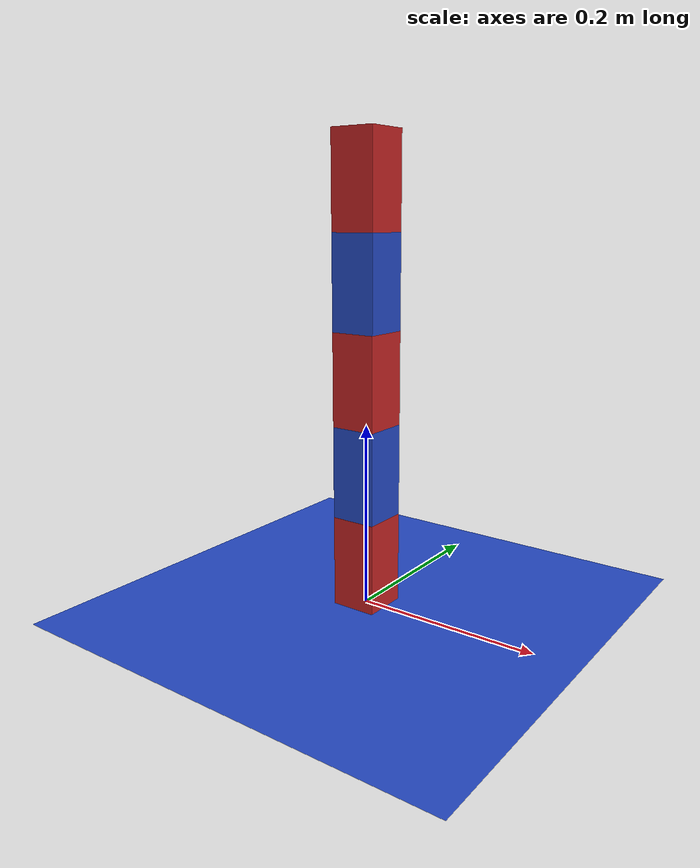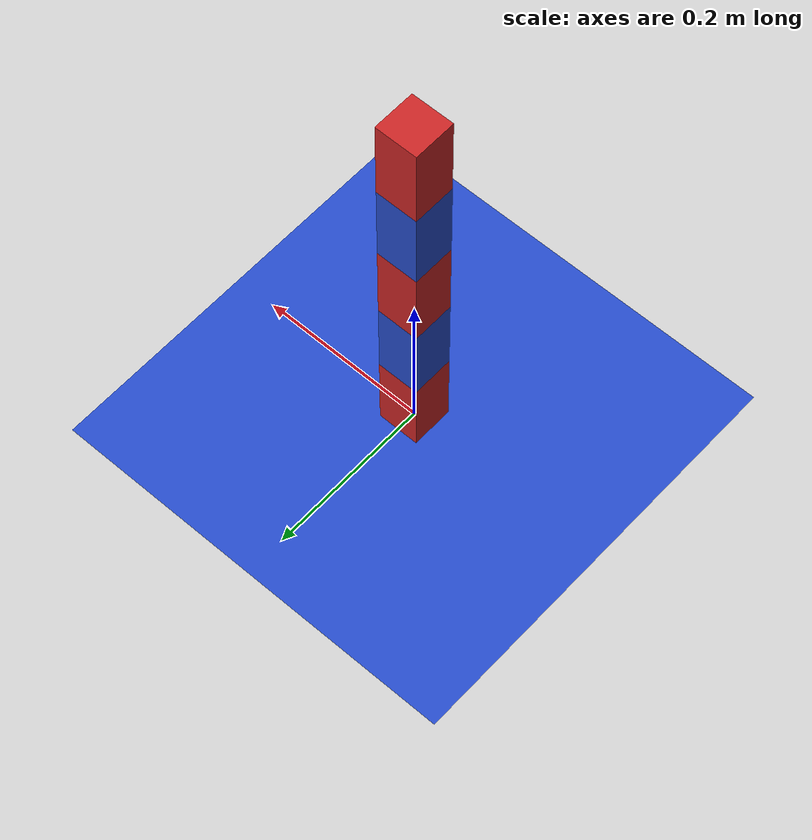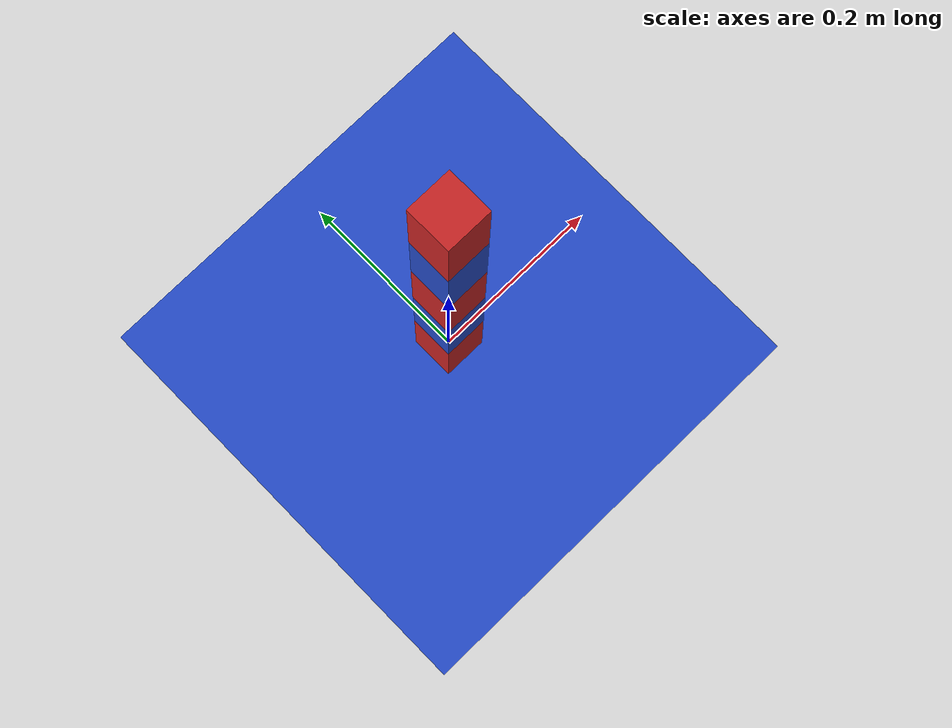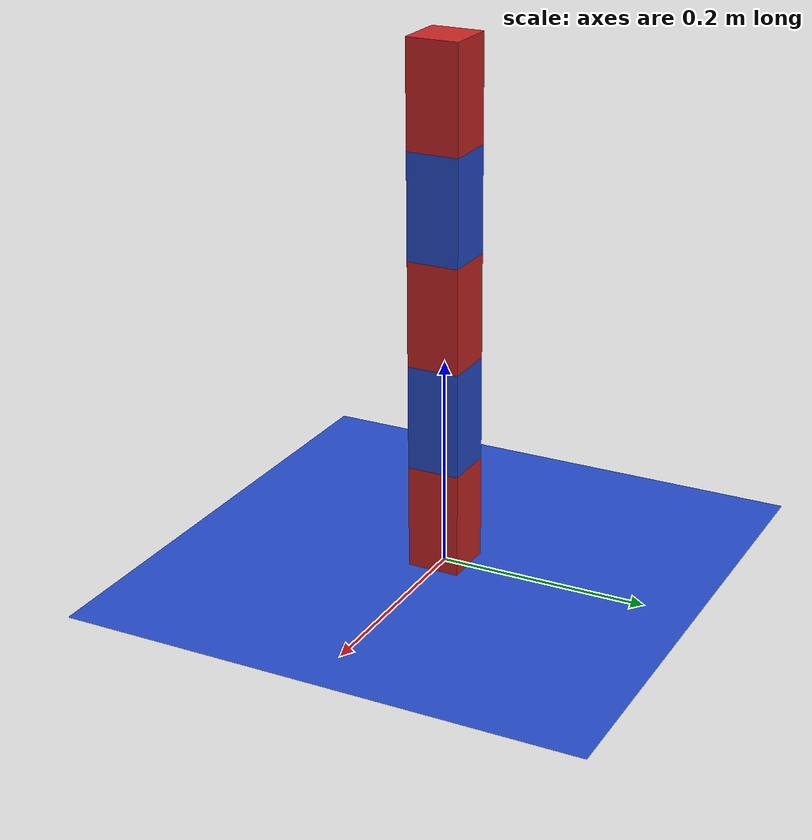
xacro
<?xml version="1.0" ?>
<robot name="./csv/sixdofarm" xmlns:xacro="http://www.ros.org/wiki/xacro">

  <property name="pi" value="3.14159265359"/>

  <material name="Red">
    <color rgba="1.0 0.0 0.0 1.0"/>
  </material>
  <material name="Green">
    <color rgba="0.0 1.0 0.0 1.0"/>
  </material>
  <material name="Blue">
    <color rgba="0.0 0.0 1.0 1.0"/>
  </material>

  <!-- world -->
  <link name="world"/>

  <joint name="world_2_base_link" type="fixed">
    <parent link="world"/>
    <child link="base_link"/>
    <origin rpy="0 0 0" xyz="0 0 0"/>

  </joint>

  <!-- base_link -->
  <link name="base_link">
    <collision>
      <origin rpy="0 0 0" xyz="0 0 0.0"/>
      <geometry>
        <box size="0.5 0.5 0"/>
      </geometry>
    </collision>
    <visual>
      <origin rpy="0 0 0" xyz="0 0 0.0"/>
      <geometry>
        <box size="0.5 0.5 0"/>
      </geometry>
      <material name="blue"/>
    </visual>

    <inertial>
      <origin rpy="0 0 0" xyz="0 0 0.0"/>
      <mass value = "0.001"/>
      <inertia ixx="0" ixy="0" ixz="0" iyy="0" iyz="0" izz="0"/>
    </inertial>

  </link>
 <gazebo reference="base_link">
    <material>Gazebo/blue</material>
  </gazebo>

  <joint name="base_link_2_Link1" type="fixed">
    <parent link="base_link"/>
    <child link="Link1"/>
    <origin rpy="0 0 0" xyz="0 0 0"/>

  </joint>

  <!-- Link1 -->
  <link name="Link1">
    <collision>
      <origin rpy="0 0 0" xyz="0 0 0.05"/>
      <geometry>
        <box size="0.05 0.05 0.1"/>
      </geometry>
    </collision>
    <visual>
      <origin rpy="0 0 0" xyz="0 0 0.05"/>
      <geometry>
        <box size="0.05 0.05 0.1"/>
      </geometry>
      <material name="red"/>
    </visual>

    <inertial>
      <origin rpy="0 0 0" xyz="0 0 0.05"/>
      <mass value="1"/>
      <inertia ixx="1" ixy="0" ixz="0" iyy="1" iyz="0" izz="1"/>
    </inertial>

  </link>
 <gazebo reference="Link1">
    <material>Gazebo/red</material>
  </gazebo>

  <joint name="Link1_2_Link2" type="revolute">
    <parent link="Link1"/>
    <child link="Link2"/>
    <origin rpy="0 0 0" xyz="0 0 0.1"/>

    <axis xyz="0 0 1"/>
    <limit effort="30" lower="-2.616" upper="2.617" velocity="1.571"/>

  </joint>

    <transmission name="trans_Link1_2_Link2">
      <type>transmission_interface/SimpleTransmission</type>
      <joint name="Link1_2_Link2">
        <hardwareInterface>EffortJointInterface</hardwareInterface>
      </joint>
      <actuator name="motor_Link1_2_Link2">
         <hardwareInterface>EffortJointInterface</hardwareInterface>
          <mechanicalReduction>1</mechanicalReduction>
      </actuator>
    </transmission>

  <!-- Link2 -->
  <link name="Link2">
    <collision>
      <origin rpy="0 0 0" xyz="0 0 0.05"/>
      <geometry>
        <box size="0 0 0"/>
      </geometry>
    </collision>
    <visual>
      <origin rpy="0 0 0" xyz="0 0 0.05"/>
      <geometry>
        <box size="0 0 0"/>
      </geometry>
      <material name="green"/>
    </visual>

    <inertial>
      <origin rpy="0 0 0" xyz="0 0 0.05"/>
      <mass value="1"/>
      <inertia ixx="1" ixy="0" ixz="0" iyy="1" iyz="0" izz="1"/>
    </inertial>

  </link>
 <gazebo reference="Link2">
    <material>Gazebo/green</material>
  </gazebo>

  <joint name="Link2_2_Link3" type="revolute">
    <parent link="Link2"/>
    <child link="Link3"/>
    <origin rpy="0 0 0" xyz="0 0 0"/>

    <axis xyz="0 1 0"/>
    <limit effort="30" lower="-2.616" upper="2.617" velocity="1.571"/>

  </joint>

    <transmission name="trans_Link2_2_Link3">
      <type>transmission_interface/SimpleTransmission</type>
      <joint name="Link2_2_Link3">
        <hardwareInterface>EffortJointInterface</hardwareInterface>
      </joint>
      <actuator name="motor_Link2_2_Link3">
         <hardwareInterface>EffortJointInterface</hardwareInterface>
          <mechanicalReduction>1</mechanicalReduction>
      </actuator>
    </transmission>

  <!-- Link3 -->
  <link name="Link3">
    <collision>
      <origin rpy="0 0 0" xyz="0 0 0.05"/>
      <geometry>
        <box size="0.05 0.05 0.1"/>
      </geometry>
    </collision>
    <visual>
      <origin rpy="0 0 0" xyz="0 0 0.05"/>
      <geometry>
        <box size="0.05 0.05 0.1"/>
      </geometry>
      <material name="blue"/>
    </visual>

    <inertial>
      <origin rpy="0 0 0" xyz="0 0 0.05"/>
      <mass value="1"/>
      <inertia ixx="1" ixy="0" ixz="0" iyy="1" iyz="0" izz="1"/>
    </inertial>

  </link>
 <gazebo reference="Link3">
    <material>Gazebo/blue</material>
  </gazebo>

  <joint name="Link3_2_Link4" type="revolute">
    <parent link="Link3"/>
    <child link="Link4"/>
    <origin rpy="0 0 0" xyz="0 0 0.1"/>

    <axis xyz="0 1 0"/>
    <limit effort="30" lower="-2.616" upper="2.617" velocity="1.571"/>

  </joint>

    <transmission name="trans_Link3_2_Link4">
      <type>transmission_interface/SimpleTransmission</type>
      <joint name="Link3_2_Link4">
        <hardwareInterface>EffortJointInterface</hardwareInterface>
      </joint>
      <actuator name="motor_Link3_2_Link4">
         <hardwareInterface>EffortJointInterface</hardwareInterface>
          <mechanicalReduction>1</mechanicalReduction>
      </actuator>
    </transmission>

  <!-- Link4 -->
  <link name="Link4">
    <collision>
      <origin rpy="0 0 0" xyz="0 0 0.05"/>
      <geometry>
        <box size="0.05 0.05 0.1"/>
      </geometry>
    </collision>
    <visual>
      <origin rpy="0 0 0" xyz="0 0 0.05"/>
      <geometry>
        <box size="0.05 0.05 0.1"/>
      </geometry>
      <material name="red"/>
    </visual>

    <inertial>
      <origin rpy="0 0 0" xyz="0 0 0.05"/>
      <mass value="1"/>
      <inertia ixx="1" ixy="0" ixz="0" iyy="1" iyz="0" izz="1"/>
    </inertial>

  </link>
 <gazebo reference="Link4">
    <material>Gazebo/red</material>
  </gazebo>

  <joint name="Link4_2_Link5" type="revolute">
    <parent link="Link4"/>
    <child link="Link5"/>
    <origin rpy="0 0 0" xyz="0 0 0.1"/>

    <axis xyz="0 0 1"/>
    <limit effort="30" lower="-2.616" upper="2.617" velocity="1.571"/>

  </joint>

    <transmission name="trans_Link4_2_Link5">
      <type>transmission_interface/SimpleTransmission</type>
      <joint name="Link4_2_Link5">
        <hardwareInterface>EffortJointInterface</hardwareInterface>
      </joint>
      <actuator name="motor_Link4_2_Link5">
         <hardwareInterface>EffortJointInterface</hardwareInterface>
          <mechanicalReduction>1</mechanicalReduction>
      </actuator>
    </transmission>

  <!-- Link5 -->
  <link name="Link5">
    <collision>
      <origin rpy="0 0 0" xyz="0 0 0.05"/>
      <geometry>
        <box size="0 0 0"/>
      </geometry>
    </collision>
    <visual>
      <origin rpy="0 0 0" xyz="0 0 0.05"/>
      <geometry>
        <box size="0 0 0"/>
      </geometry>
      <material name="green"/>
    </visual>

    <inertial>
      <origin rpy="0 0 0" xyz="0 0 0.05"/>
      <mass value="1"/>
      <inertia ixx="1" ixy="0" ixz="0" iyy="1" iyz="0" izz="1"/>
    </inertial>

  </link>
 <gazebo reference="Link5">
    <material>Gazebo/green</material>
  </gazebo>

  <joint name="Link5_2_Link6" type="revolute">
    <parent link="Link5"/>
    <child link="Link6"/>
    <origin rpy="0 0 0" xyz="0 0 0"/>

    <axis xyz="0 1 0"/>
    <limit effort="30" lower="-2.616" upper="2.617" velocity="1.571"/>

  </joint>

    <transmission name="trans_Link5_2_Link6">
      <type>transmission_interface/SimpleTransmission</type>
      <joint name="Link5_2_Link6">
        <hardwareInterface>EffortJointInterface</hardwareInterface>
      </joint>
      <actuator name="motor_Link5_2_Link6">
         <hardwareInterface>EffortJointInterface</hardwareInterface>
          <mechanicalReduction>1</mechanicalReduction>
      </actuator>
    </transmission>

  <!-- Link6 -->
  <link name="Link6">
    <collision>
      <origin rpy="0 0 0" xyz="0 0 0.05"/>
      <geometry>
        <box size="0.05 0.05 0.1"/>
      </geometry>
    </collision>
    <visual>
      <origin rpy="0 0 0" xyz="0 0 0.05"/>
      <geometry>
        <box size="0.05 0.05 0.1"/>
      </geometry>
      <material name="blue"/>
    </visual>

    <inertial>
      <origin rpy="0 0 0" xyz="0 0 0.05"/>
      <mass value="1"/>
      <inertia ixx="1" ixy="0" ixz="0" iyy="1" iyz="0" izz="1"/>
    </inertial>

  </link>
 <gazebo reference="Link6">
    <material>Gazebo/blue</material>
  </gazebo>

  <joint name="Link6_2_Link7" type="revolute">
    <parent link="Link6"/>
    <child link="Link7"/>
    <origin rpy="0 0 0" xyz="0 0 0.1"/>

    <axis xyz="0 0 1"/>
    <limit effort="30" lower="-2.616" upper="2.617" velocity="1.571"/>

  </joint>

    <transmission name="trans_Link6_2_Link7">
      <type>transmission_interface/SimpleTransmission</type>
      <joint name="Link6_2_Link7">
        <hardwareInterface>EffortJointInterface</hardwareInterface>
      </joint>
      <actuator name="motor_Link6_2_Link7">
         <hardwareInterface>EffortJointInterface</hardwareInterface>
          <mechanicalReduction>1</mechanicalReduction>
      </actuator>
    </transmission>

  <!-- Link7 -->
  <link name="Link7">
    <collision>
      <origin rpy="0 0 0" xyz="0 0 0.05"/>
      <geometry>
        <box size="0.05 0.05 0.1"/>
      </geometry>
    </collision>
    <visual>
      <origin rpy="0 0 0" xyz="0 0 0.05"/>
      <geometry>
        <box size="0.05 0.05 0.1"/>
      </geometry>
      <material name="red"/>
    </visual>

    <inertial>
      <origin rpy="0 0 0" xyz="0 0 0.05"/>
      <mass value="1"/>
      <inertia ixx="1" ixy="0" ixz="0" iyy="1" iyz="0" izz="1"/>
    </inertial>

  </link>
 <gazebo reference="Link7">
    <material>Gazebo/red</material>
  </gazebo>

  <gazebo>
    <plugin name="gazebo_ros_control" filename="libgazebo_ros_control.so">
      <robotNamespace>/./csv/sixdofarm</robotNamespace>
    </plugin>
  </gazebo>

</robot>
